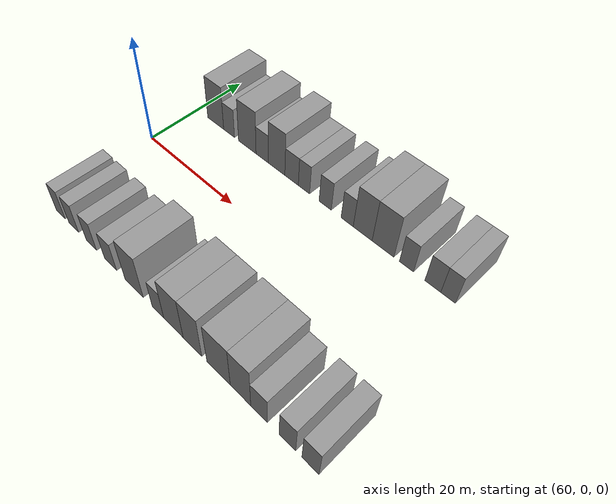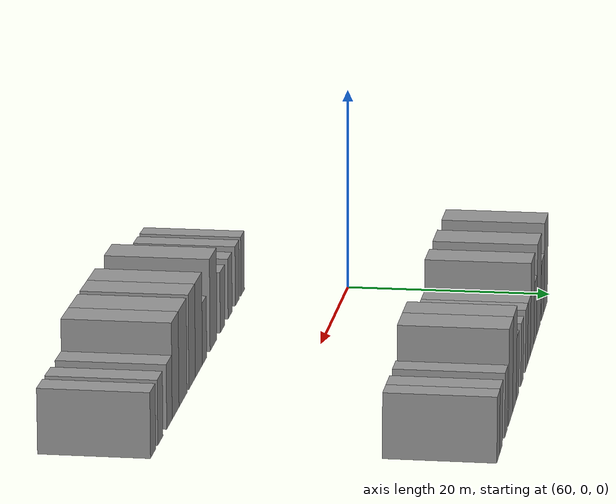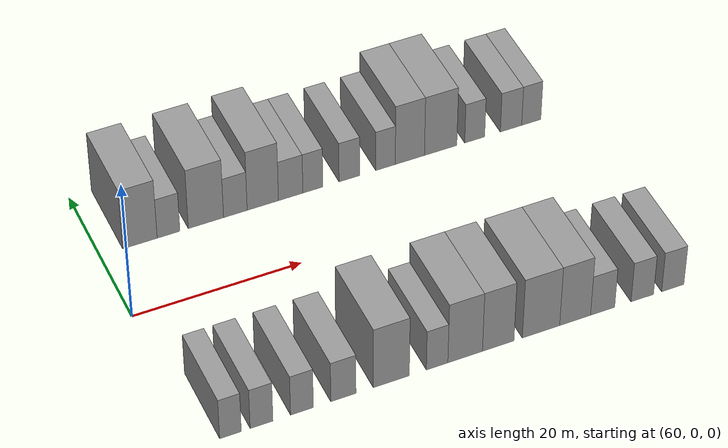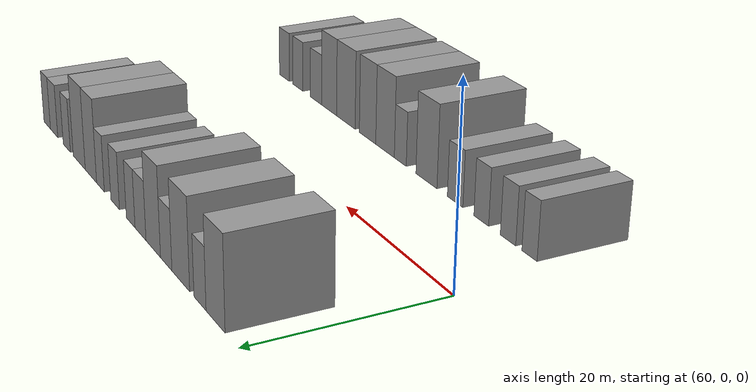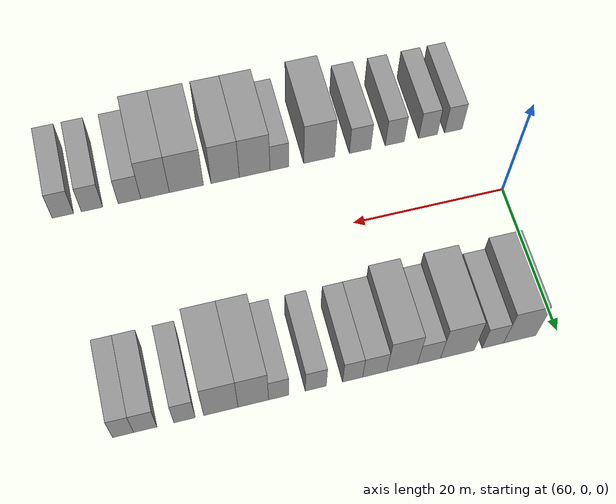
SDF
<sdf version="1.6">
 <world name="default">
  <model name="building_13">
   <static>1</static>
   <pose>64.7471 15.0000 0 0.000000 0.000000 1.570796</pose>
   <link name="link">
    <pose>0 0 4.50 0 0 0</pose>
    <collision name="collision"><geometry><box><size>10.0000 4.0969 9.0000</size></box></geometry></collision>
    <visual name="visual">
     <cast_shadows>0</cast_shadows>
     <geometry><box><size>10.0000 4.0969 9.0000</size></box></geometry>
     <material>
      <script>
       <uri>model://grey_wall/materials/scripts</uri>
       <uri>model://grey_wall/materials/textures</uri>
       <name>vrc/grey_wall</name>
      </script>
     </material>
    </visual>
   </link>
  </model>
  <model name="building_14">
   <static>1</static>
   <pose>68.1561 15.0000 0 0.000000 0.000000 1.570796</pose>
   <link name="link">
    <pose>0 0 3.00 0 0 0</pose>
    <collision name="collision"><geometry><box><size>10.0000 2.7211 6.0000</size></box></geometry></collision>
    <visual name="visual">
     <cast_shadows>0</cast_shadows>
     <geometry><box><size>10.0000 2.7211 6.0000</size></box></geometry>
     <material>
      <script>
       <uri>model://grey_wall/materials/scripts</uri>
       <uri>model://grey_wall/materials/textures</uri>
       <name>vrc/grey_wall</name>
      </script>
     </material>
    </visual>
   </link>
  </model>
  <model name="building_15">
   <static>1</static>
   <pose>72.6376 15.0000 0 0.000000 0.000000 1.570796</pose>
   <link name="link">
    <pose>0 0 4.50 0 0 0</pose>
    <collision name="collision"><geometry><box><size>10.0000 4.2419 9.0000</size></box></geometry></collision>
    <visual name="visual">
     <cast_shadows>0</cast_shadows>
     <geometry><box><size>10.0000 4.2419 9.0000</size></box></geometry>
     <material>
      <script>
       <uri>model://grey_wall/materials/scripts</uri>
       <uri>model://grey_wall/materials/textures</uri>
       <name>vrc/grey_wall</name>
      </script>
     </material>
    </visual>
   </link>
  </model>
  <model name="building_16">
   <static>1</static>
   <pose>76.1897 15.0000 0 0.000000 0.000000 1.570796</pose>
   <link name="link">
    <pose>0 0 3.00 0 0 0</pose>
    <collision name="collision"><geometry><box><size>10.0000 2.8624 6.0000</size></box></geometry></collision>
    <visual name="visual">
     <cast_shadows>0</cast_shadows>
     <geometry><box><size>10.0000 2.8624 6.0000</size></box></geometry>
     <material>
      <script>
       <uri>model://grey_wall/materials/scripts</uri>
       <uri>model://grey_wall/materials/textures</uri>
       <name>vrc/grey_wall</name>
      </script>
     </material>
    </visual>
   </link>
  </model>
  <model name="building_17">
   <static>1</static>
   <pose>79.5258 15.0000 0 0.000000 0.000000 1.570796</pose>
   <link name="link">
    <pose>0 0 4.50 0 0 0</pose>
    <collision name="collision"><geometry><box><size>10.0000 3.8097 9.0000</size></box></geometry></collision>
    <visual name="visual">
     <cast_shadows>0</cast_shadows>
     <geometry><box><size>10.0000 3.8097 9.0000</size></box></geometry>
     <material>
      <script>
       <uri>model://grey_wall/materials/scripts</uri>
       <uri>model://grey_wall/materials/textures</uri>
       <name>vrc/grey_wall</name>
      </script>
     </material>
    </visual>
   </link>
  </model>
  <model name="building_18">
   <static>1</static>
   <pose>82.9254 15.0000 0 0.000000 0.000000 1.570796</pose>
   <link name="link">
    <pose>0 0 3.00 0 0 0</pose>
    <collision name="collision"><geometry><box><size>10.0000 2.9894 6.0000</size></box></geometry></collision>
    <visual name="visual">
     <cast_shadows>0</cast_shadows>
     <geometry><box><size>10.0000 2.9894 6.0000</size></box></geometry>
     <material>
      <script>
       <uri>model://grey_wall/materials/scripts</uri>
       <uri>model://grey_wall/materials/textures</uri>
       <name>vrc/grey_wall</name>
      </script>
     </material>
    </visual>
   </link>
  </model>
  <model name="building_19">
   <static>1</static>
   <pose>85.6485 15.0000 0 0.000000 0.000000 1.570796</pose>
   <link name="link">
    <pose>0 0 3.00 0 0 0</pose>
    <collision name="collision"><geometry><box><size>10.0000 2.4570 6.0000</size></box></geometry></collision>
    <visual name="visual">
     <cast_shadows>0</cast_shadows>
     <geometry><box><size>10.0000 2.4570 6.0000</size></box></geometry>
     <material>
      <script>
       <uri>model://grey_wall/materials/scripts</uri>
       <uri>model://grey_wall/materials/textures</uri>
       <name>vrc/grey_wall</name>
      </script>
     </material>
    </visual>
   </link>
  </model>
  <model name="building_20">
   <static>1</static>
   <pose>90.1554 15.0000 0 0.000000 0.000000 1.570796</pose>
   <link name="link">
    <pose>0 0 3.00 0 0 0</pose>
    <collision name="collision"><geometry><box><size>10.0000 2.5568 6.0000</size></box></geometry></collision>
    <visual name="visual">
     <cast_shadows>0</cast_shadows>
     <geometry><box><size>10.0000 2.5568 6.0000</size></box></geometry>
     <material>
      <script>
       <uri>model://grey_wall/materials/scripts</uri>
       <uri>model://grey_wall/materials/textures</uri>
       <name>vrc/grey_wall</name>
      </script>
     </material>
    </visual>
   </link>
  </model>
  <model name="building_21">
   <static>1</static>
   <pose>94.6502 15.0000 0 0.000000 0.000000 1.570796</pose>
   <link name="link">
    <pose>0 0 3.00 0 0 0</pose>
    <collision name="collision"><geometry><box><size>10.0000 2.4329 6.0000</size></box></geometry></collision>
    <visual name="visual">
     <cast_shadows>0</cast_shadows>
     <geometry><box><size>10.0000 2.4329 6.0000</size></box></geometry>
     <material>
      <script>
       <uri>model://grey_wall/materials/scripts</uri>
       <uri>model://grey_wall/materials/textures</uri>
       <name>vrc/grey_wall</name>
      </script>
     </material>
    </visual>
   </link>
  </model>
  <model name="building_22">
   <static>1</static>
   <pose>97.7045 15.0000 0 0.000000 0.000000 1.570796</pose>
   <link name="link">
    <pose>0 0 4.50 0 0 0</pose>
    <collision name="collision"><geometry><box><size>10.0000 3.6756 9.0000</size></box></geometry></collision>
    <visual name="visual">
     <cast_shadows>0</cast_shadows>
     <geometry><box><size>10.0000 3.6756 9.0000</size></box></geometry>
     <material>
      <script>
       <uri>model://grey_wall/materials/scripts</uri>
       <uri>model://grey_wall/materials/textures</uri>
       <name>vrc/grey_wall</name>
      </script>
     </material>
    </visual>
   </link>
  </model>
  <model name="building_23">
   <static>1</static>
   <pose>101.5891 15.0000 0 0.000000 0.000000 1.570796</pose>
   <link name="link">
    <pose>0 0 4.50 0 0 0</pose>
    <collision name="collision"><geometry><box><size>10.0000 4.0937 9.0000</size></box></geometry></collision>
    <visual name="visual">
     <cast_shadows>0</cast_shadows>
     <geometry><box><size>10.0000 4.0937 9.0000</size></box></geometry>
     <material>
      <script>
       <uri>model://grey_wall/materials/scripts</uri>
       <uri>model://grey_wall/materials/textures</uri>
       <name>vrc/grey_wall</name>
      </script>
     </material>
    </visual>
   </link>
  </model>
  <model name="building_24">
   <static>1</static>
   <pose>105.9074 15.0000 0 0.000000 0.000000 1.570796</pose>
   <link name="link">
    <pose>0 0 3.00 0 0 0</pose>
    <collision name="collision"><geometry><box><size>10.0000 2.5429 6.0000</size></box></geometry></collision>
    <visual name="visual">
     <cast_shadows>0</cast_shadows>
     <geometry><box><size>10.0000 2.5429 6.0000</size></box></geometry>
     <material>
      <script>
       <uri>model://grey_wall/materials/scripts</uri>
       <uri>model://grey_wall/materials/textures</uri>
       <name>vrc/grey_wall</name>
      </script>
     </material>
    </visual>
   </link>
  </model>
  <model name="building_25">
   <static>1</static>
   <pose>110.5502 15.0000 0 0.000000 0.000000 1.570796</pose>
   <link name="link">
    <pose>0 0 3.00 0 0 0</pose>
    <collision name="collision"><geometry><box><size>10.0000 2.7427 6.0000</size></box></geometry></collision>
    <visual name="visual">
     <cast_shadows>0</cast_shadows>
     <geometry><box><size>10.0000 2.7427 6.0000</size></box></geometry>
     <material>
      <script>
       <uri>model://grey_wall/materials/scripts</uri>
       <uri>model://grey_wall/materials/textures</uri>
       <name>vrc/grey_wall</name>
      </script>
     </material>
    </visual>
   </link>
  </model>
  <model name="building_26">
   <static>1</static>
   <pose>113.1542 15.0000 0 0.000000 0.000000 1.570796</pose>
   <link name="link">
    <pose>0 0 3.00 0 0 0</pose>
    <collision name="collision"><geometry><box><size>10.0000 2.4653 6.0000</size></box></geometry></collision>
    <visual name="visual">
     <cast_shadows>0</cast_shadows>
     <geometry><box><size>10.0000 2.4653 6.0000</size></box></geometry>
     <material>
      <script>
       <uri>model://grey_wall/materials/scripts</uri>
       <uri>model://grey_wall/materials/textures</uri>
       <name>vrc/grey_wall</name>
      </script>
     </material>
    </visual>
   </link>
  </model>
  <model name="building_66">
   <static>1</static>
   <pose>63.4383 -15.0000 0 0.000000 0.000000 1.570796</pose>
   <link name="link">
    <pose>0 0 3.00 0 0 0</pose>
    <collision name="collision"><geometry><box><size>10.0000 2.4390 6.0000</size></box></geometry></collision>
    <visual name="visual">
     <cast_shadows>0</cast_shadows>
     <geometry><box><size>10.0000 2.4390 6.0000</size></box></geometry>
     <material>
      <script>
       <uri>model://grey_wall/materials/scripts</uri>
       <uri>model://grey_wall/materials/textures</uri>
       <name>vrc/grey_wall</name>
      </script>
     </material>
    </visual>
   </link>
  </model>
  <model name="building_67">
   <static>1</static>
   <pose>66.9491 -15.0000 0 0.000000 0.000000 1.570796</pose>
   <link name="link">
    <pose>0 0 3.00 0 0 0</pose>
    <collision name="collision"><geometry><box><size>10.0000 2.5826 6.0000</size></box></geometry></collision>
    <visual name="visual">
     <cast_shadows>0</cast_shadows>
     <geometry><box><size>10.0000 2.5826 6.0000</size></box></geometry>
     <material>
      <script>
       <uri>model://grey_wall/materials/scripts</uri>
       <uri>model://grey_wall/materials/textures</uri>
       <name>vrc/grey_wall</name>
      </script>
     </material>
    </visual>
   </link>
  </model>
  <model name="building_68">
   <static>1</static>
   <pose>71.5431 -15.0000 0 0.000000 0.000000 1.570796</pose>
   <link name="link">
    <pose>0 0 3.00 0 0 0</pose>
    <collision name="collision"><geometry><box><size>10.0000 2.6054 6.0000</size></box></geometry></collision>
    <visual name="visual">
     <cast_shadows>0</cast_shadows>
     <geometry><box><size>10.0000 2.6054 6.0000</size></box></geometry>
     <material>
      <script>
       <uri>model://grey_wall/materials/scripts</uri>
       <uri>model://grey_wall/materials/textures</uri>
       <name>vrc/grey_wall</name>
      </script>
     </material>
    </visual>
   </link>
  </model>
  <model name="building_69">
   <static>1</static>
   <pose>76.2995 -15.0000 0 0.000000 0.000000 1.570796</pose>
   <link name="link">
    <pose>0 0 3.00 0 0 0</pose>
    <collision name="collision"><geometry><box><size>10.0000 2.9075 6.0000</size></box></geometry></collision>
    <visual name="visual">
     <cast_shadows>0</cast_shadows>
     <geometry><box><size>10.0000 2.9075 6.0000</size></box></geometry>
     <material>
      <script>
       <uri>model://grey_wall/materials/scripts</uri>
       <uri>model://grey_wall/materials/textures</uri>
       <name>vrc/grey_wall</name>
      </script>
     </material>
    </visual>
   </link>
  </model>
  <model name="building_70">
   <static>1</static>
   <pose>81.8507 -15.0000 0 0.000000 0.000000 1.570796</pose>
   <link name="link">
    <pose>0 0 4.50 0 0 0</pose>
    <collision name="collision"><geometry><box><size>10.0000 4.1948 9.0000</size></box></geometry></collision>
    <visual name="visual">
     <cast_shadows>0</cast_shadows>
     <geometry><box><size>10.0000 4.1948 9.0000</size></box></geometry>
     <material>
      <script>
       <uri>model://grey_wall/materials/scripts</uri>
       <uri>model://grey_wall/materials/textures</uri>
       <name>vrc/grey_wall</name>
      </script>
     </material>
    </visual>
   </link>
  </model>
  <model name="building_71">
   <static>1</static>
   <pose>87.2132 -15.0000 0 0.000000 0.000000 1.570796</pose>
   <link name="link">
    <pose>0 0 3.00 0 0 0</pose>
    <collision name="collision"><geometry><box><size>10.0000 2.5302 6.0000</size></box></geometry></collision>
    <visual name="visual">
     <cast_shadows>0</cast_shadows>
     <geometry><box><size>10.0000 2.5302 6.0000</size></box></geometry>
     <material>
      <script>
       <uri>model://grey_wall/materials/scripts</uri>
       <uri>model://grey_wall/materials/textures</uri>
       <name>vrc/grey_wall</name>
      </script>
     </material>
    </visual>
   </link>
  </model>
  <model name="building_72">
   <static>1</static>
   <pose>90.5232 -15.0000 0 0.000000 0.000000 1.570796</pose>
   <link name="link">
    <pose>0 0 4.50 0 0 0</pose>
    <collision name="collision"><geometry><box><size>10.0000 4.0898 9.0000</size></box></geometry></collision>
    <visual name="visual">
     <cast_shadows>0</cast_shadows>
     <geometry><box><size>10.0000 4.0898 9.0000</size></box></geometry>
     <material>
      <script>
       <uri>model://grey_wall/materials/scripts</uri>
       <uri>model://grey_wall/materials/textures</uri>
       <name>vrc/grey_wall</name>
      </script>
     </material>
    </visual>
   </link>
  </model>
  <model name="building_73">
   <static>1</static>
   <pose>94.4469 -15.0000 0 0.000000 0.000000 1.570796</pose>
   <link name="link">
    <pose>0 0 4.50 0 0 0</pose>
    <collision name="collision"><geometry><box><size>10.0000 3.7576 9.0000</size></box></geometry></collision>
    <visual name="visual">
     <cast_shadows>0</cast_shadows>
     <geometry><box><size>10.0000 3.7576 9.0000</size></box></geometry>
     <material>
      <script>
       <uri>model://grey_wall/materials/scripts</uri>
       <uri>model://grey_wall/materials/textures</uri>
       <name>vrc/grey_wall</name>
      </script>
     </material>
    </visual>
   </link>
  </model>
  <model name="building_74">
   <static>1</static>
   <pose>99.5706 -15.0000 0 0.000000 0.000000 1.570796</pose>
   <link name="link">
    <pose>0 0 4.50 0 0 0</pose>
    <collision name="collision"><geometry><box><size>10.0000 4.4899 9.0000</size></box></geometry></collision>
    <visual name="visual">
     <cast_shadows>0</cast_shadows>
     <geometry><box><size>10.0000 4.4899 9.0000</size></box></geometry>
     <material>
      <script>
       <uri>model://grey_wall/materials/scripts</uri>
       <uri>model://grey_wall/materials/textures</uri>
       <name>vrc/grey_wall</name>
      </script>
     </material>
    </visual>
   </link>
  </model>
  <model name="building_75">
   <static>1</static>
   <pose>103.6866 -15.0000 0 0.000000 0.000000 1.570796</pose>
   <link name="link">
    <pose>0 0 4.50 0 0 0</pose>
    <collision name="collision"><geometry><box><size>10.0000 3.7420 9.0000</size></box></geometry></collision>
    <visual name="visual">
     <cast_shadows>0</cast_shadows>
     <geometry><box><size>10.0000 3.7420 9.0000</size></box></geometry>
     <material>
      <script>
       <uri>model://grey_wall/materials/scripts</uri>
       <uri>model://grey_wall/materials/textures</uri>
       <name>vrc/grey_wall</name>
      </script>
     </material>
    </visual>
   </link>
  </model>
  <model name="building_76">
   <static>1</static>
   <pose>107.0297 -15.0000 0 0.000000 0.000000 1.570796</pose>
   <link name="link">
    <pose>0 0 3.00 0 0 0</pose>
    <collision name="collision"><geometry><box><size>10.0000 2.9443 6.0000</size></box></geometry></collision>
    <visual name="visual">
     <cast_shadows>0</cast_shadows>
     <geometry><box><size>10.0000 2.9443 6.0000</size></box></geometry>
     <material>
      <script>
       <uri>model://grey_wall/materials/scripts</uri>
       <uri>model://grey_wall/materials/textures</uri>
       <name>vrc/grey_wall</name>
      </script>
     </material>
    </visual>
   </link>
  </model>
  <model name="building_77">
   <static>1</static>
   <pose>111.8841 -15.0000 0 0.000000 0.000000 1.570796</pose>
   <link name="link">
    <pose>0 0 3.00 0 0 0</pose>
    <collision name="collision"><geometry><box><size>10.0000 2.7645 6.0000</size></box></geometry></collision>
    <visual name="visual">
     <cast_shadows>0</cast_shadows>
     <geometry><box><size>10.0000 2.7645 6.0000</size></box></geometry>
     <material>
      <script>
       <uri>model://grey_wall/materials/scripts</uri>
       <uri>model://grey_wall/materials/textures</uri>
       <name>vrc/grey_wall</name>
      </script>
     </material>
    </visual>
   </link>
  </model>
  <model name="building_78">
   <static>1</static>
   <pose>115.6421 -15.0000 0 0.000000 0.000000 1.570796</pose>
   <link name="link">
    <pose>0 0 3.00 0 0 0</pose>
    <collision name="collision"><geometry><box><size>10.0000 2.7515 6.0000</size></box></geometry></collision>
    <visual name="visual">
     <cast_shadows>0</cast_shadows>
     <geometry><box><size>10.0000 2.7515 6.0000</size></box></geometry>
     <material>
      <script>
       <uri>model://grey_wall/materials/scripts</uri>
       <uri>model://grey_wall/materials/textures</uri>
       <name>vrc/grey_wall</name>
      </script>
     </material>
    </visual>
   </link>
  </model>
 </world>
</sdf>
